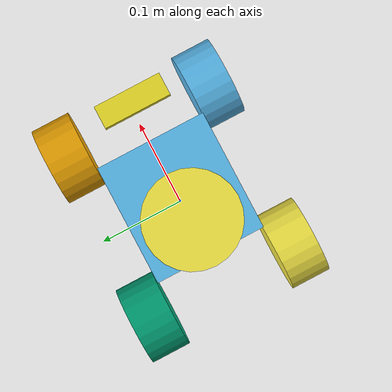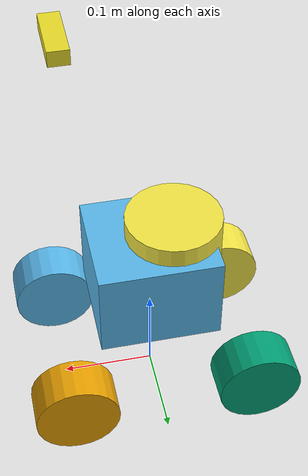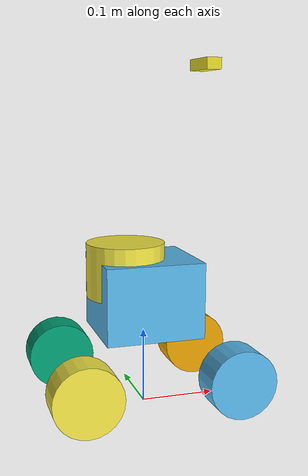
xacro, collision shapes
<?xml version="1.0"?>

<robot name="limo_four_diff" xmlns:xacro="http://ros.org/wiki/xacro">

    <xacro:include filename="$(find limo_description)/urdf/limo_xacro_3d.xacro" />

    <!-- Variables -->
    <xacro:property name="M_PI" value="3.14159"/>

    <!-- Vehicle Geometries -->
    <xacro:property name="base_x_size" value="0.13" />
    <xacro:property name="base_y_size" value="0.12" />
    <xacro:property name="base_z_size" value="0.1" />

    <xacro:property name="wheelbase" value="0.2"/>
    <xacro:property name="track" value="0.13"/>
    <xacro:property name="wheel_vertical_offset" value="-0.10" />
    <xacro:property name="base_mass" value="2.1557"/>

    <xacro:property name="wheel_length" value="0.045" />
    <xacro:property name="wheel_radius" value="0.045" />
  <link name="base_footprint"/>

  <joint name="base_joint" type="fixed">
    <parent link="base_footprint"/>
    <child link="base_link"/>
    <origin xyz="0.0 0.0 0.15" rpy="0 0 0"/>
  </joint>
    <!-- Base link -->
    <link name="base_link">
        <visual>
            <origin xyz="0 0 -0.15" rpy="0 0 1.57" />
            <geometry>
                <mesh filename="file://$(find limo_description)/meshes/limo_base.dae" scale="1 1 1"/>
            </geometry>
        </visual>
        <collision>
            <!--origin xyz="0 0 -0.15" rpy="0 0 1.57" /-->
            <origin xyz="0 0 0" rpy="0 0 0" />
          <geometry>
              <box size="${base_x_size} ${base_y_size} ${base_z_size}"/>
          </geometry>
        </collision>
    </link>

    <link name="inertial_link">
        <inertial>
            <origin xyz="0.0 0.0 0.0" />
            <mass value="${base_mass}" />
            <inertia ixx="0.24" ixy="0" ixz="0"
                     iyy="0.96" iyz="0"
                     izz="0.96" />
        </inertial>
    </link>

    <joint name="inertial_joint" type="fixed">
        <origin xyz="0 0 0" rpy="0 0 0" />
        <parent link="base_link" />
        <child link="inertial_link" />
    </joint>

    <xacro:limo_velodyne parent_prefix="base_link" frame_prefix="velodyne">
        <origin xyz="-0.025 0 0" rpy="0 0 0"/>
    </xacro:limo_velodyne>

    <xacro:limo_depth_camera parent_prefix="base_link" frame_prefix="depth_camera">
        <origin xyz="0.084 0 0.3" rpy="0 0 0"/>
    </xacro:limo_depth_camera>

    <xacro:limo_imu parent_prefix="base_link" frame_prefix="imu">
        <origin xyz="0.0 0 -0.1" rpy="0 0 0"/>
    </xacro:limo_imu>

    <xacro:limo_wheel parent_prefix="base_link" wheel_prefix="front_left" reflect="1">
        <origin xyz="${wheelbase/2} ${track/2} ${wheel_vertical_offset}" rpy="0 0  0" />
    </xacro:limo_wheel>

    <xacro:limo_wheel parent_prefix="base_link" wheel_prefix="front_right" reflect="-1">
        <origin xyz="${wheelbase/2} ${-track/2} ${wheel_vertical_offset}" rpy="${M_PI} 0 0" />
    </xacro:limo_wheel>

    <xacro:limo_wheel parent_prefix="base_link" wheel_prefix="rear_left" reflect="1">
        <origin xyz="${-wheelbase/2} ${track/2} ${wheel_vertical_offset}" rpy="0 0 0" />
    </xacro:limo_wheel>

    <xacro:limo_wheel parent_prefix="base_link" wheel_prefix="rear_right" reflect="-1">
        <origin xyz="${-wheelbase/2} ${-track/2} ${wheel_vertical_offset}" rpy="${M_PI} 0 0" />
    </xacro:limo_wheel>

    <ros2_control name="GazeboSystem" type="system">
    <hardware>
      <plugin>gazebo_ros2_control/GazeboSystem</plugin>
    </hardware>
    <joint name="front_left_wheel">
      <command_interface name="velocity">
        <param name="min">-1</param>
        <param name="max">1</param>
      </command_interface>
      <state_interface name="position"/>
      <state_interface name="velocity"/>
    </joint>
    <joint name="front_right_wheel">
      <command_interface name="velocity">
        <param name="min">-1</param>
        <param name="max">1</param>
      </command_interface>
      <state_interface name="position"/>
      <state_interface name="velocity"/>
    </joint>
    <joint name="rear_left_wheel">
      <command_interface name="velocity">
        <param name="min">-1</param>
        <param name="max">1</param>
      </command_interface>
      <state_interface name="position"/>
      <state_interface name="velocity"/>
    </joint>
    <joint name="rear_right_wheel">
      <command_interface name="velocity">
        <param name="min">-1</param>
        <param name="max">1</param>
      </command_interface>
      <state_interface name="position"/>
      <state_interface name="velocity"/>
    </joint>
    </ros2_control>

  <gazebo>
    <!-- Joint state publisher -->
    <plugin filename="libgazebo_ros2_control.so" name="gazebo_ros2_control">
      <parameters>$(find limo_description)/config/diff_drive_controller.yaml</parameters>
    </plugin>
  </gazebo>

    <gazebo reference="velodyne_base_link" >
        <sensor name='velodyne-VLP16' type='ray'>
        <visualize>0</visualize>
        <update_rate>10</update_rate>
        <ray>
          <scan>
            <horizontal>
              <samples>440</samples>
              <resolution>1</resolution>
              <min_angle>-3.14159</min_angle>
              <max_angle>3.14159</max_angle>
            </horizontal>
            <vertical>
              <samples>16</samples>
              <resolution>1</resolution>
              <min_angle>-0.261799</min_angle>
              <max_angle>0.261799</max_angle>
            </vertical>
          </scan>
          <range>
            <min>0.3</min>
            <max>131</max>
            <resolution>0.001</resolution>
          </range>
          <noise>
            <type>gaussian</type>
            <mean>0</mean>
            <stddev>0</stddev>
          </noise>
        </ray>
        <plugin name='gazebo_ros_laser_controller' filename='libgazebo_ros_velodyne_laser.so'>
          <topicName>/points_raw</topicName>
          <frameName>velodyne</frameName>
          <min_range>0.9</min_range>
          <max_range>130.0</max_range>
          <gaussianNoise>0.008</gaussianNoise>
        </plugin>
        <pose>0 0 -0.4377 3.14159 0 3.14159</pose>
      </sensor>

    </gazebo>
</robot>

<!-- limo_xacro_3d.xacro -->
<robot name="limo_xacro" xmlns:xacro="http://ros.org/wiki/xacro">
    <xacro:macro name="limo_wheel" params="parent_prefix wheel_prefix reflect *joint_pose">
        <link name="${wheel_prefix}_wheel_link">
            <inertial>
                <origin xyz="0 0 0" />
                <mass value="2" />
                <inertia ixx="0.145833"
                        ixy="0.0"
                        ixz="0.0"
                        iyy="0.145833"
                        iyz="0.0"
                        izz="0.125"/>
            </inertial>
            <visual>
                <origin xyz="0 0 0" rpy="0 0 0" />
                <geometry>
                    <mesh filename="file://$(find limo_description)/meshes/limo_wheel.dae" />
                </geometry>
            </visual>
            <collision>
              <origin xyz="0 ${wheel_length/2} 0" rpy="1.57 0 0" />
              <geometry>
                  <cylinder length="${wheel_length}" radius="${wheel_radius}" />
              </geometry>
            </collision>
        </link>

        <joint name="${wheel_prefix}_wheel" type="continuous">
            <parent link="${parent_prefix}"/>
            <child link="${wheel_prefix}_wheel_link"/>
            <xacro:insert_block name="joint_pose"/>
            <axis xyz="0 ${reflect*1} 0"/>
        </joint>
    </xacro:macro>

    <xacro:macro name="limo_velodyne" params="parent_prefix frame_prefix *joint_pose">
        <link name='${frame_prefix}_base_link'>
            <inertial>
            <mass value="0.83"/>
            <origin xyz="0 0 0.03585"/>
            <inertia ixx="0.000908059425" ixy="0" ixz="0" iyy="0.000908059425" iyz="0" izz="0.0011049624"/>
            </inertial>
            <visual>
            <geometry>
                <mesh filename="package://velodyne_description/meshes/VLP16_base_1.dae"/>
            </geometry>
            </visual>
            <visual>
            <geometry>
                <mesh filename="package://velodyne_description/meshes/VLP16_base_2.dae"/>
            </geometry>
            </visual>
            <collision>
            <origin rpy="0 0 0" xyz="0 0 0.03585"/>
            <geometry>
                <cylinder length="0.0717" radius="0.0516"/>
            </geometry>
            </collision>
        </link>

        <link name="velodyne">
            <inertial>
            <mass value="0.01"/>
            <origin xyz="0 0 0"/>
            <inertia ixx="1e-7" ixy="0" ixz="0" iyy="1e-7" iyz="0" izz="1e-7"/>
            </inertial>
            <visual>
            <origin xyz="0 0 -0.0377"/>
            <geometry>
                <mesh filename="package://velodyne_description/meshes/VLP16_scan.dae"/>
            </geometry>
            </visual>
        </link>

        <joint type="fixed" name="velodyne_joint">
            <xacro:insert_block name="joint_pose"/>
            <child link="${frame_prefix}_base_link"/>
            <parent link="${parent_prefix}"/>
            <origin rpy="0 3.141592653589793 0" xyz="0 0 -0.4"/>
        </joint>
        <joint name="velodyne_base_scan_joint" type="fixed">
            <origin rpy="0 0 0" xyz="0 0 0.0377"/>
            <parent link="${frame_prefix}_base_link"/>
            <child link="velodyne"/>
        </joint>
    </xacro:macro>

    <xacro:macro name="limo_depth_camera" params="parent_prefix frame_prefix *joint_pose">
        <link name='${frame_prefix}_link'>
            <pose>0 0 0 0 0 0</pose>
            <inertial>
                <mass value="0.1"/>
                <origin xyz="0.0 0 0" rpy="0 0 0"/>
                <inertia
                    ixx="1e-6" ixy="0" ixz="0"
                    iyy="1e-6" iyz="0"
                    izz="1e-6"
                />
            </inertial>
            <visual name='depth_camera_visual'>
                <origin xyz="0 0 0" rpy="0 0 0"/>
                <geometry>
                    <box size="0.02 0.06 0.015"/>
                </geometry>
                <material name='depth_camera_material'>
                    <ambient>0.1 0.1 0.1 1</ambient>
                    <diffuse>0.1 0.1 0.2 1</diffuse>
                    <specular>0 0 0 0</specular>
                    <emissive>0 0 0 1</emissive>
                </material>
            </visual>
            <collision name='depth_camera_collision'>
                <origin xyz="0 0 0" rpy="0 0 0"/>
                <geometry>
                    <box size="0.02 0.06 0.015"/>
                </geometry>
            </collision>

        </link>

        <joint type="fixed" name="depth_camera_joint">
            <xacro:insert_block name="joint_pose"/>
            <child link="${frame_prefix}_link"/>
            <parent link="${parent_prefix}"/>
        </joint>
        <link name="depth_link"></link>

        <joint name="${frame_prefix}_to_camera_joint" type="fixed">
            <origin xyz="0 0 0" rpy="${-M_PI/2} 0 ${-M_PI/2} "/>
            <parent link="${frame_prefix}_link"/>
            <child link="depth_link"/>
          </joint>

        <gazebo reference="${frame_prefix}_link">
            <material>Gazebo/Yellow</material>
        </gazebo>
    </xacro:macro>

    <xacro:macro name="limo_imu" params="parent_prefix frame_prefix  *joint_pose">
        <link name='${frame_prefix}_link'>
            <pose>0 0 0 0 0 0</pose>
            <inertial>
                <mass value="0.01"/>
                <origin xyz="0.0 0 0" rpy="0 0 0"/>
                <inertia
                    ixx="1e-7" ixy="0" ixz="0"
                    iyy="1e-7" iyz="0"
                    izz="1e-7"
                />
            </inertial>
            <visual name='imu_visual'>
                <origin xyz="0 0 0" rpy="0 0 0"/>
                <material name='imu_material'>
                    <ambient>0.1 0.1 0.1 1</ambient>
                    <diffuse>0.1 0.1 0.2 1</diffuse>
                    <specular>0 0 0 0</specular>
                    <emissive>0 0 0 1</emissive>
                </material>
            </visual>
            <collision name='imu_collision'>
                <origin xyz="0 0 0" rpy="0 0 0"/>
                <geometry>
                    <box size="0.001 0.001 0.001"/>
                </geometry>
            </collision>
        </link>
        <joint type="fixed" name="imu_joint">
            <xacro:insert_block name="joint_pose"/>
            <child link="${frame_prefix}_link"/>
            <parent link="${parent_prefix}"/>
        </joint>
        <gazebo reference="${frame_prefix}_link">
            <material>Gazebo/Yellow</material>
        </gazebo>
    </xacro:macro>
</robot>
